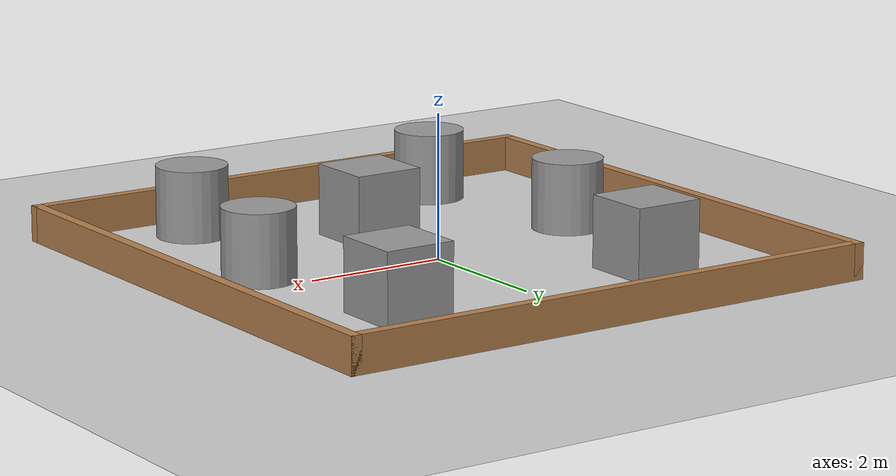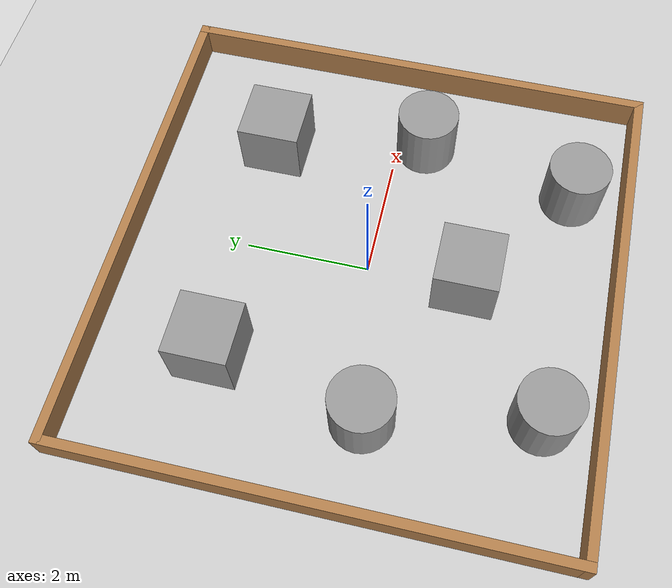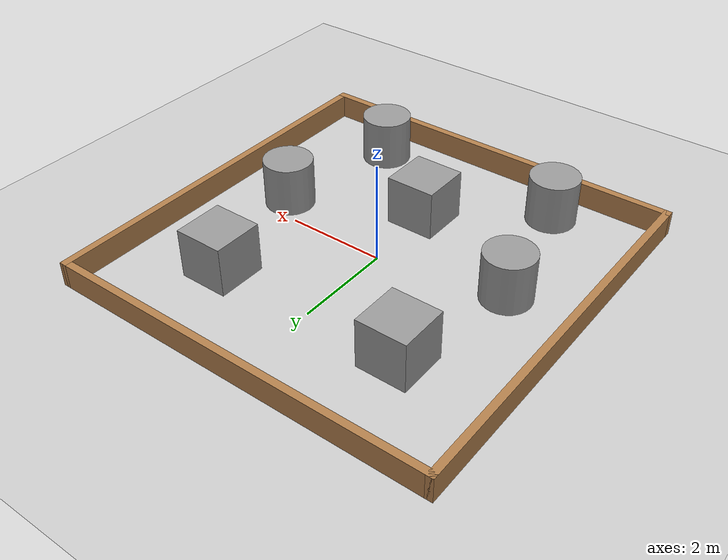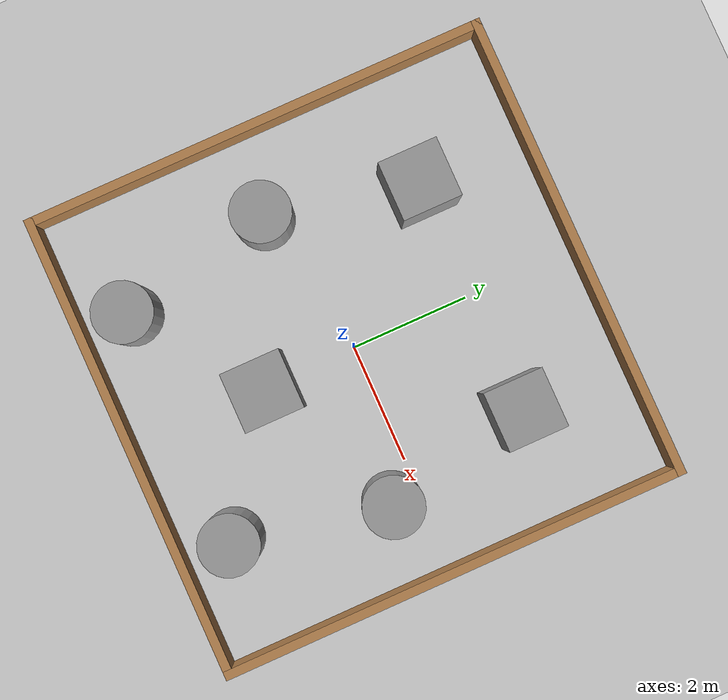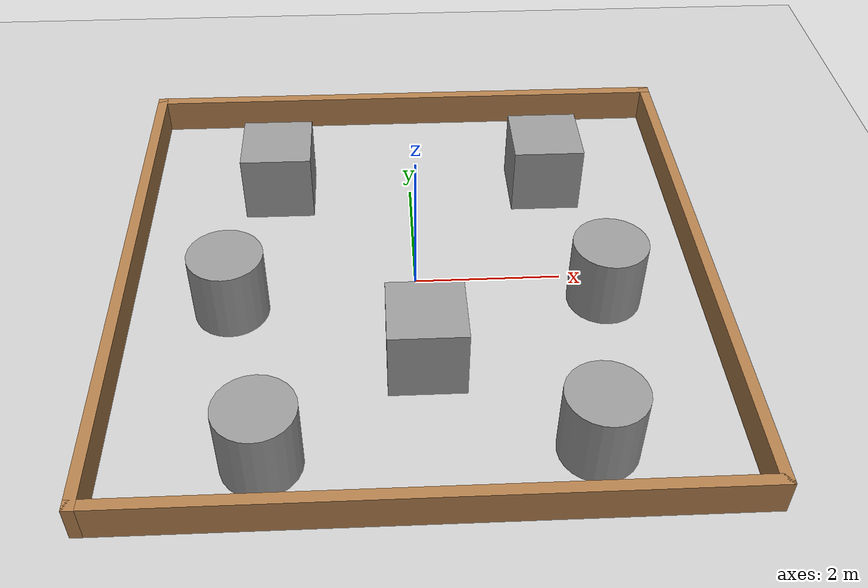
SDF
<sdf version="1.7">
 <world name="default">
  <light name="sun" type="directional">
   <pose>0 0 10 0 -0 0</pose>
   <diffuse>0.8 0.8 0.8 1</diffuse>
   <specular>0.2 0.2 0.2 1</specular>
   <attenuation>
    <range>1000</range>
    <constant>0.9</constant>
    <linear>0.01</linear>
    <quadratic>0.001</quadratic>
   </attenuation>
   <direction>-0.5 0.1 -0.9</direction>
   <spot><inner_angle>0</inner_angle><outer_angle>0</outer_angle><falloff>0</falloff></spot>
  </light>
  <model name="ground_plane">
   <static>1</static>
   <link name="link">
    <collision name="collision">
     <geometry><plane><normal>0 0 1</normal><size>100 100</size></plane></geometry>
     <surface>
      <contact><collide_bitmask>65535</collide_bitmask></contact>
      <friction><ode><mu>100</mu><mu2>50</mu2></ode></friction>
     </surface>
    </collision>
    <visual name="visual">
     <cast_shadows>0</cast_shadows>
     <geometry><plane><normal>0 0 1</normal><size>100 100</size></plane></geometry>
     <material>
      <script><uri>file://media/materials/scripts/gazebo.material</uri><name>Gazebo/Grey</name></script>
     </material>
    </visual>
   </link>
  </model>
  <gravity>0 0 -9.8</gravity>
  <magnetic_field>6e-06 2.3e-05 -4.2e-05</magnetic_field>
  <atmosphere type="adiabatic"/>
  <physics type="ode">
   <max_step_size>0.001</max_step_size>
   <real_time_factor>1</real_time_factor>
   <real_time_update_rate>1000</real_time_update_rate>
  </physics>
  <scene><ambient>0.4 0.4 0.4 1</ambient><background>0.7 0.7 0.7 1</background><shadows>1</shadows></scene>
  <audio><device>default</device></audio>
  <spherical_coordinates>
   <surface_model>EARTH_WGS84</surface_model>
   <latitude_deg>0</latitude_deg>
   <longitude_deg>0</longitude_deg>
   <elevation>0</elevation>
   <heading_deg>0</heading_deg>
  </spherical_coordinates>
  <model name="wall_8x8">
   <link name="Wall_0">
    <collision name="Wall_0_Collision">
     <geometry><box><size>8 0.15 0.5</size></box></geometry>
     <pose>0 0 0.25 0 -0 0</pose>
    </collision>
    <visual name="Wall_0_Visual">
     <pose>0 0 0.25 0 -0 0</pose>
     <geometry><box><size>8 0.15 0.5</size></box></geometry>
     <material>
      <script><uri>file://media/materials/scripts/gazebo.material</uri><name>Gazebo/Wood</name></script>
      <ambient>1 1 1 1</ambient>
     </material>
     <meta><layer>0</layer></meta>
    </visual>
    <pose>-3.925 -0 0 0 -0 1.5708</pose>
   </link>
   <link name="Wall_5">
    <collision name="Wall_5_Collision">
     <geometry><box><size>8 0.15 0.5</size></box></geometry>
     <pose>0 0 0.25 0 -0 0</pose>
    </collision>
    <visual name="Wall_5_Visual">
     <pose>0 0 0.25 0 -0 0</pose>
     <geometry><box><size>8 0.15 0.5</size></box></geometry>
     <material>
      <script><uri>file://media/materials/scripts/gazebo.material</uri><name>Gazebo/Wood</name></script>
      <ambient>1 1 1 1</ambient>
     </material>
     <meta><layer>0</layer></meta>
    </visual>
    <pose>-0 3.925 0 0 -0 0</pose>
   </link>
   <link name="Wall_6">
    <collision name="Wall_6_Collision">
     <geometry><box><size>8 0.15 0.5</size></box></geometry>
     <pose>0 0 0.25 0 -0 0</pose>
    </collision>
    <visual name="Wall_6_Visual">
     <pose>0 0 0.25 0 -0 0</pose>
     <geometry><box><size>8 0.15 0.5</size></box></geometry>
     <material>
      <script><uri>file://media/materials/scripts/gazebo.material</uri><name>Gazebo/Wood</name></script>
      <ambient>1 1 1 1</ambient>
     </material>
     <meta><layer>0</layer></meta>
    </visual>
    <pose>3.925 -0 0 0 -0 -1.5708</pose>
   </link>
   <link name="Wall_7">
    <collision name="Wall_7_Collision">
     <geometry><box><size>8 0.15 0.5</size></box></geometry>
     <pose>0 0 0.25 0 -0 0</pose>
    </collision>
    <visual name="Wall_7_Visual">
     <pose>0 0 0.25 0 -0 0</pose>
     <geometry><box><size>8 0.15 0.5</size></box></geometry>
     <material>
      <script><uri>file://media/materials/scripts/gazebo.material</uri><name>Gazebo/Wood</name></script>
      <ambient>1 1 1 1</ambient>
     </material>
     <meta><layer>0</layer></meta>
    </visual>
    <pose>-0 -3.925 0 0 -0 3.14159</pose>
   </link>
   <static>1</static>
  </model>
  <model name="unit_box">
   <link name="link">
    <inertial>
     <mass>1</mass>
     <inertia>
      <ixx>0.166667</ixx>
      <ixy>0</ixy>
      <ixz>0</ixz>
      <iyy>0.166667</iyy>
      <iyz>0</iyz>
      <izz>0.166667</izz>
     </inertia>
    </inertial>
    <visual name="visual">
     <geometry><box><size>1 1 1</size></box></geometry>
     <material>
      <script><name>Gazebo/Grey</name><uri>file://media/materials/scripts/gazebo.material</uri></script>
      <shader type="pixel"><normal_map>__default__</normal_map></shader>
      <ambient>0.1 0.1 0.1 0</ambient>
      <diffuse>0.7 0.7 0.7 1</diffuse>
      <specular>0.01 0.01 0.01 1</specular>
      <emissive>0 0 0 1</emissive>
     </material>
    </visual>
    <collision name="collision">
     <geometry><box><size>1 1 1</size></box></geometry>
     <surface>
      <friction>
       <ode><mu>1</mu><mu2>1</mu2><fdir1>0 0 0</fdir1><slip1>0</slip1><slip2>0</slip2></ode>
       <torsional>
        <coefficient>1</coefficient>
        <patch_radius>0</patch_radius>
        <surface_radius>0</surface_radius>
        <use_patch_radius>1</use_patch_radius>
        <ode><slip>0</slip></ode>
       </torsional>
      </friction>
      <bounce><restitution_coefficient>0</restitution_coefficient><threshold>1e+06</threshold></bounce>
      <contact>
       <collide_without_contact>0</collide_without_contact>
       <collide_without_contact_bitmask>1</collide_without_contact_bitmask>
       <collide_bitmask>1</collide_bitmask>
       <ode>
        <soft_cfm>0</soft_cfm>
        <soft_erp>0.2</soft_erp>
        <kp>1e+13</kp>
        <kd>1</kd>
        <max_vel>0.01</max_vel>
        <min_depth>0</min_depth>
       </ode>
       <bullet>
        <split_impulse>1</split_impulse>
        <split_impulse_penetration_threshold>-0.01</split_impulse_penetration_threshold>
        <soft_cfm>0</soft_cfm>
        <soft_erp>0.2</soft_erp>
        <kp>1e+13</kp>
        <kd>1</kd>
       </bullet>
      </contact>
     </surface>
    </collision>
   </link>
   <static>0</static>
   <pose>-1.94756 2.00335 0.499995 -1e-05 -0 -0</pose>
  </model>
  <model name="unit_box_0">
   <link name="link">
    <inertial>
     <mass>1</mass>
     <inertia>
      <ixx>0.166667</ixx>
      <ixy>0</ixy>
      <ixz>0</ixz>
      <iyy>0.166667</iyy>
      <iyz>0</iyz>
      <izz>0.166667</izz>
     </inertia>
    </inertial>
    <visual name="visual">
     <geometry><box><size>1 1 1</size></box></geometry>
     <material>
      <script><name>Gazebo/Grey</name><uri>file://media/materials/scripts/gazebo.material</uri></script>
      <shader type="pixel"><normal_map>__default__</normal_map></shader>
      <ambient>0.1 0.1 0.1 0</ambient>
      <diffuse>0.7 0.7 0.7 1</diffuse>
      <specular>0.01 0.01 0.01 1</specular>
      <emissive>0 0 0 1</emissive>
     </material>
    </visual>
    <collision name="collision">
     <geometry><box><size>1 1 1</size></box></geometry>
     <surface>
      <friction>
       <ode><mu>1</mu><mu2>1</mu2><fdir1>0 0 0</fdir1><slip1>0</slip1><slip2>0</slip2></ode>
       <torsional>
        <coefficient>1</coefficient>
        <patch_radius>0</patch_radius>
        <surface_radius>0</surface_radius>
        <use_patch_radius>1</use_patch_radius>
        <ode><slip>0</slip></ode>
       </torsional>
      </friction>
      <bounce><restitution_coefficient>0</restitution_coefficient><threshold>1e+06</threshold></bounce>
      <contact>
       <collide_without_contact>0</collide_without_contact>
       <collide_without_contact_bitmask>1</collide_without_contact_bitmask>
       <collide_bitmask>1</collide_bitmask>
       <ode>
        <soft_cfm>0</soft_cfm>
        <soft_erp>0.2</soft_erp>
        <kp>1e+13</kp>
        <kd>1</kd>
        <max_vel>0.01</max_vel>
        <min_depth>0</min_depth>
       </ode>
       <bullet>
        <split_impulse>1</split_impulse>
        <split_impulse_penetration_threshold>-0.01</split_impulse_penetration_threshold>
        <soft_cfm>0</soft_cfm>
        <soft_erp>0.2</soft_erp>
        <kp>1e+13</kp>
        <kd>1</kd>
       </bullet>
      </contact>
     </surface>
    </collision>
   </link>
   <static>0</static>
   <pose>2.00061 2.02198 0.499995 -1e-05 -0 -0</pose>
  </model>
  <model name="unit_cylinder_0">
   <link name="link">
    <inertial>
     <mass>1</mass>
     <inertia><ixx>0.145833</ixx><ixy>0</ixy><ixz>0</ixz><iyy>0.145833</iyy><iyz>0</iyz><izz>0.125</izz></inertia>
    </inertial>
    <visual name="visual">
     <geometry><cylinder><radius>0.5</radius><length>1</length></cylinder></geometry>
     <material>
      <script><name>Gazebo/Grey</name><uri>file://media/materials/scripts/gazebo.material</uri></script>
      <shader type="pixel"><normal_map>__default__</normal_map></shader>
      <ambient>0.1 0.1 0.1 1</ambient>
      <diffuse>0.7 0.7 0.7 1</diffuse>
      <specular>0.01 0.01 0.01 1</specular>
      <emissive>0 0 0 1</emissive>
     </material>
    </visual>
    <collision name="collision">
     <geometry><cylinder><radius>0.5</radius><length>1</length></cylinder></geometry>
     <surface>
      <friction>
       <ode><mu>1</mu><mu2>1</mu2><fdir1>0 0 0</fdir1><slip1>0</slip1><slip2>0</slip2></ode>
       <torsional>
        <coefficient>1</coefficient>
        <patch_radius>0</patch_radius>
        <surface_radius>0</surface_radius>
        <use_patch_radius>1</use_patch_radius>
        <ode><slip>0</slip></ode>
       </torsional>
      </friction>
      <bounce><restitution_coefficient>0</restitution_coefficient><threshold>1e+06</threshold></bounce>
      <contact>
       <collide_without_contact>0</collide_without_contact>
       <collide_without_contact_bitmask>1</collide_without_contact_bitmask>
       <collide_bitmask>1</collide_bitmask>
       <ode>
        <soft_cfm>0</soft_cfm>
        <soft_erp>0.2</soft_erp>
        <kp>1e+13</kp>
        <kd>1</kd>
        <max_vel>0.01</max_vel>
        <min_depth>0</min_depth>
       </ode>
       <bullet>
        <split_impulse>1</split_impulse>
        <split_impulse_penetration_threshold>-0.01</split_impulse_penetration_threshold>
        <soft_cfm>0</soft_cfm>
        <soft_erp>0.2</soft_erp>
        <kp>1e+13</kp>
        <kd>1</kd>
       </bullet>
      </contact>
     </surface>
    </collision>
   </link>
   <static>0</static>
   <pose>-2.49588 -0.476438 0.499991 -0 -0 -0</pose>
  </model>
  <model name="unit_cylinder_1">
   <link name="link">
    <inertial>
     <mass>1</mass>
     <inertia><ixx>0.145833</ixx><ixy>0</ixy><ixz>0</ixz><iyy>0.145833</iyy><iyz>0</iyz><izz>0.125</izz></inertia>
    </inertial>
    <visual name="visual">
     <geometry><cylinder><radius>0.5</radius><length>1</length></cylinder></geometry>
     <material>
      <script><name>Gazebo/Grey</name><uri>file://media/materials/scripts/gazebo.material</uri></script>
      <shader type="pixel"><normal_map>__default__</normal_map></shader>
      <ambient>0.1 0.1 0.1 1</ambient>
      <diffuse>0.7 0.7 0.7 1</diffuse>
      <specular>0.01 0.01 0.01 1</specular>
      <emissive>0 0 0 1</emissive>
     </material>
    </visual>
    <collision name="collision">
     <geometry><cylinder><radius>0.5</radius><length>1</length></cylinder></geometry>
     <surface>
      <friction>
       <ode><mu>1</mu><mu2>1</mu2><fdir1>0 0 0</fdir1><slip1>0</slip1><slip2>0</slip2></ode>
       <torsional>
        <coefficient>1</coefficient>
        <patch_radius>0</patch_radius>
        <surface_radius>0</surface_radius>
        <use_patch_radius>1</use_patch_radius>
        <ode><slip>0</slip></ode>
       </torsional>
      </friction>
      <bounce><restitution_coefficient>0</restitution_coefficient><threshold>1e+06</threshold></bounce>
      <contact>
       <collide_without_contact>0</collide_without_contact>
       <collide_without_contact_bitmask>1</collide_without_contact_bitmask>
       <collide_bitmask>1</collide_bitmask>
       <ode>
        <soft_cfm>0</soft_cfm>
        <soft_erp>0.2</soft_erp>
        <kp>1e+13</kp>
        <kd>1</kd>
        <max_vel>0.01</max_vel>
        <min_depth>0</min_depth>
       </ode>
       <bullet>
        <split_impulse>1</split_impulse>
        <split_impulse_penetration_threshold>-0.01</split_impulse_penetration_threshold>
        <soft_cfm>0</soft_cfm>
        <soft_erp>0.2</soft_erp>
        <kp>1e+13</kp>
        <kd>1</kd>
       </bullet>
      </contact>
     </surface>
    </collision>
   </link>
   <static>0</static>
   <pose>2.5343 -0.460265 0.5 0 -0 0</pose>
  </model>
  <model name="unit_box_1">
   <link name="link">
    <inertial>
     <mass>1</mass>
     <inertia>
      <ixx>0.166667</ixx>
      <ixy>0</ixy>
      <ixz>0</ixz>
      <iyy>0.166667</iyy>
      <iyz>0</iyz>
      <izz>0.166667</izz>
     </inertia>
    </inertial>
    <visual name="visual">
     <geometry><box><size>1 1 1</size></box></geometry>
     <material>
      <script><name>Gazebo/Grey</name><uri>file://media/materials/scripts/gazebo.material</uri></script>
      <shader type="pixel"><normal_map>__default__</normal_map></shader>
      <ambient>0.1 0.1 0.1 0</ambient>
      <diffuse>0.7 0.7 0.7 1</diffuse>
      <specular>0.01 0.01 0.01 1</specular>
      <emissive>0 0 0 1</emissive>
     </material>
    </visual>
    <collision name="collision">
     <geometry><box><size>1 1 1</size></box></geometry>
     <surface>
      <friction>
       <ode><mu>1</mu><mu2>1</mu2><fdir1>0 0 0</fdir1><slip1>0</slip1><slip2>0</slip2></ode>
       <torsional>
        <coefficient>1</coefficient>
        <patch_radius>0</patch_radius>
        <surface_radius>0</surface_radius>
        <use_patch_radius>1</use_patch_radius>
        <ode><slip>0</slip></ode>
       </torsional>
      </friction>
      <bounce><restitution_coefficient>0</restitution_coefficient><threshold>1e+06</threshold></bounce>
      <contact>
       <collide_without_contact>0</collide_without_contact>
       <collide_without_contact_bitmask>1</collide_without_contact_bitmask>
       <collide_bitmask>1</collide_bitmask>
       <ode>
        <soft_cfm>0</soft_cfm>
        <soft_erp>0.2</soft_erp>
        <kp>1e+13</kp>
        <kd>1</kd>
        <max_vel>0.01</max_vel>
        <min_depth>0</min_depth>
       </ode>
       <bullet>
        <split_impulse>1</split_impulse>
        <split_impulse_penetration_threshold>-0.01</split_impulse_penetration_threshold>
        <soft_cfm>0</soft_cfm>
        <soft_erp>0.2</soft_erp>
        <kp>1e+13</kp>
        <kd>1</kd>
       </bullet>
      </contact>
     </surface>
    </collision>
   </link>
   <static>0</static>
   <pose>0.057989 -1.59086 0.499995 -1e-05 -0 -0</pose>
  </model>
  <model name="unit_cylinder_2">
   <link name="link">
    <inertial>
     <mass>1</mass>
     <inertia><ixx>0.145833</ixx><ixy>0</ixy><ixz>0</ixz><iyy>0.145833</iyy><iyz>0</iyz><izz>0.125</izz></inertia>
    </inertial>
    <visual name="visual">
     <geometry><cylinder><radius>0.5</radius><length>1</length></cylinder></geometry>
     <material>
      <script><name>Gazebo/Grey</name><uri>file://media/materials/scripts/gazebo.material</uri></script>
      <shader type="pixel"><normal_map>__default__</normal_map></shader>
      <ambient>0.1 0.1 0.1 1</ambient>
      <diffuse>0.7 0.7 0.7 1</diffuse>
      <specular>0.01 0.01 0.01 1</specular>
      <emissive>0 0 0 1</emissive>
     </material>
    </visual>
    <collision name="collision">
     <geometry><cylinder><radius>0.5</radius><length>1</length></cylinder></geometry>
     <surface>
      <friction>
       <ode><mu>1</mu><mu2>1</mu2><fdir1>0 0 0</fdir1><slip1>0</slip1><slip2>0</slip2></ode>
       <torsional>
        <coefficient>1</coefficient>
        <patch_radius>0</patch_radius>
        <surface_radius>0</surface_radius>
        <use_patch_radius>1</use_patch_radius>
        <ode><slip>0</slip></ode>
       </torsional>
      </friction>
      <bounce><restitution_coefficient>0</restitution_coefficient><threshold>1e+06</threshold></bounce>
      <contact>
       <collide_without_contact>0</collide_without_contact>
       <collide_without_contact_bitmask>1</collide_without_contact_bitmask>
       <collide_bitmask>1</collide_bitmask>
       <ode>
        <soft_cfm>0</soft_cfm>
        <soft_erp>0.2</soft_erp>
        <kp>1e+13</kp>
        <kd>1</kd>
        <max_vel>0.01</max_vel>
        <min_depth>0</min_depth>
       </ode>
       <bullet>
        <split_impulse>1</split_impulse>
        <split_impulse_penetration_threshold>-0.01</split_impulse_penetration_threshold>
        <soft_cfm>0</soft_cfm>
        <soft_erp>0.2</soft_erp>
        <kp>1e+13</kp>
        <kd>1</kd>
       </bullet>
      </contact>
     </surface>
    </collision>
   </link>
   <static>0</static>
   <pose>-1.94519 -3.07346 0.5 0 -0 0</pose>
  </model>
  <model name="unit_cylinder_3">
   <link name="link">
    <inertial>
     <mass>1</mass>
     <inertia><ixx>0.145833</ixx><ixy>0</ixy><ixz>0</ixz><iyy>0.145833</iyy><iyz>0</iyz><izz>0.125</izz></inertia>
    </inertial>
    <visual name="visual">
     <geometry><cylinder><radius>0.5</radius><length>1</length></cylinder></geometry>
     <material>
      <script><name>Gazebo/Grey</name><uri>file://media/materials/scripts/gazebo.material</uri></script>
      <shader type="pixel"><normal_map>__default__</normal_map></shader>
      <ambient>0.1 0.1 0.1 1</ambient>
      <diffuse>0.7 0.7 0.7 1</diffuse>
      <specular>0.01 0.01 0.01 1</specular>
      <emissive>0 0 0 1</emissive>
     </material>
    </visual>
    <collision name="collision">
     <geometry><cylinder><radius>0.5</radius><length>1</length></cylinder></geometry>
     <surface>
      <friction>
       <ode><mu>1</mu><mu2>1</mu2><fdir1>0 0 0</fdir1><slip1>0</slip1><slip2>0</slip2></ode>
       <torsional>
        <coefficient>1</coefficient>
        <patch_radius>0</patch_radius>
        <surface_radius>0</surface_radius>
        <use_patch_radius>1</use_patch_radius>
        <ode><slip>0</slip></ode>
       </torsional>
      </friction>
      <bounce><restitution_coefficient>0</restitution_coefficient><threshold>1e+06</threshold></bounce>
      <contact>
       <collide_without_contact>0</collide_without_contact>
       <collide_without_contact_bitmask>1</collide_without_contact_bitmask>
       <collide_bitmask>1</collide_bitmask>
       <ode>
        <soft_cfm>0</soft_cfm>
        <soft_erp>0.2</soft_erp>
        <kp>1e+13</kp>
        <kd>1</kd>
        <max_vel>0.01</max_vel>
        <min_depth>0</min_depth>
       </ode>
       <bullet>
        <split_impulse>1</split_impulse>
        <split_impulse_penetration_threshold>-0.01</split_impulse_penetration_threshold>
        <soft_cfm>0</soft_cfm>
        <soft_erp>0.2</soft_erp>
        <kp>1e+13</kp>
        <kd>1</kd>
       </bullet>
      </contact>
     </surface>
    </collision>
   </link>
   <static>0</static>
   <pose>2.02688 -3.02819 0.499991 -0 -0 -0</pose>
  </model>
 </world>
</sdf>
